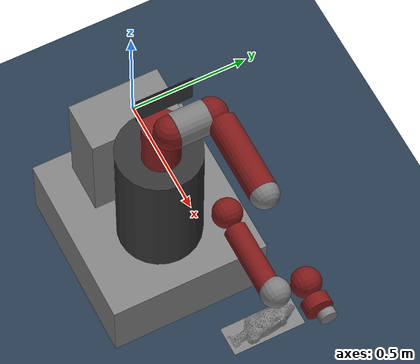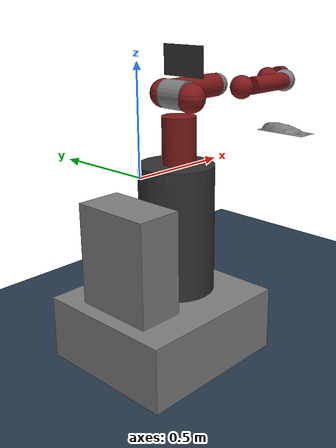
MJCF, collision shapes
<mujoco model='sawyer_fish'>
  <compiler meshdir="./mesh/sawyer/" angle='radian'/>
  <option timestep="0.005" collision='predefined'/>

  <asset>
      <mesh name="pedestal"   file="pedestal.stl" />
      <mesh name="base"       file="base.stl" />
      <mesh name="l0"         file="l0.stl" />
      <mesh name="head"       file="head.stl" />
      <mesh name="l1"         file="l1.stl" />
      <mesh name="l2"         file="l2.stl" />
      <mesh name="l3"         file="l3.stl" />
      <mesh name="l4"         file="l4.stl" />
      <mesh name="l5"         file="l5.stl" />
      <mesh name="l6"         file="l6.stl" />
      <mesh name="fish"       file="../fish/fish.stl" />
      <texture name="texplane" type="2d" builtin="checker" rgb1=".2 .3 .4" rgb2=".1 0.15 0.2" width="512" height="512"/>
      <material name="MatPlane" reflectance="0.3" texture="texplane" texrepeat="1 1" texuniform="true"/>
  </asset>

  <worldbody>
    <!-- Lights -->
    <light name="light0" diffuse="1 1 1" pos="0 0 3" dir="0 0 -1" castshadow="false"/>
    <light name="light1" diffuse="1 1 1" pos="1 -1 -.1" dir="-1 1 1" castshadow="false"/>
    <light name="light2" diffuse="1 1 1" pos="1.5 0 3"  dir="0 0 -1" castshadow="false"/>
    <!-- Environment -->
    <geom name="floor" pos="0 0 -.913" size="5 5 .125" type="plane" material="MatPlane" condim="3"/>
    <geom name="table" pos="1.1 0 0.025" type="plane" size=".4 .6 0.1" group = "1" rgba=".1 .1 .1 1"/>

    <body name="fish" pos="1.1 0 0.055" quat="1 0 0 0" >
      <joint name="fish" type="free" limited="false"/>
        <geom name="fish" pos="0 0 0" quat="1 0 0 0" type="mesh" group="1" mesh="fish" />
        <site name="fish_front" pos="-0.038 0 0.01" quat="1 0 0 0" type="sphere" size="1e-3" group="2" rgba="1 1 0 1" />
    </body>

    <!-- Robot -->
     <body name="base" pos=".25 0 0">
         <inertial pos="0 0 0" mass="0" diaginertia="0 0 0" />
         <body name="controller_box" pos="0 0 0">
             <inertial pos="-0.325 0 -0.38" mass="46.64" diaginertia="1.71363 1.27988 0.809981" />
             <geom name="controller_box" size="0.11 0.2 0.265" pos="-0.325 0 -0.38" type="box" />
         </body>
         <body name="pedestal_feet" pos="0 0 0">
             <inertial pos="-0.1225 0 -0.758" mass="167.09" diaginertia="8.16095 9.59375 15.0785" />
             <geom name="pedestal_feet" size="0.385 0.35 0.155" pos="-0.1225 0 -0.758" type="box" />
         </body>
         <body name="torso" pos="0 0 0">
             <inertial pos="0 0 0" mass="0.0001" diaginertia="1e-08 1e-08 1e-08" />
             <geom name="torso" size="0.05 0.05 0.05" type="box" contype="0" conaffinity="0" group="1" rgba="0.2 0.2 0.2 1" />
         </body>
         <body name="pedestal" pos="0 0 0">
             <inertial pos="0 0 0" quat="0.659267 -0.259505 -0.260945 0.655692" mass="60.864" diaginertia="6.0869 5.81635 4.20915" />
             <geom name="pedestal" pos="0.26 0.345 -0.91488" quat="0.5 0.5 -0.5 -0.5" type="mesh" contype="0" conaffinity="0" group="1" rgba="0.2 0.2 0.2 1" mesh="pedestal" />
             <geom name="pedestal_coll" size="0.18 0.31" pos="-0.02 0 -0.29" type="cylinder" rgba="0.2 0.2 0.2 1" />
         </body>
         <body name="right_arm_base_link" pos="0 0 0">
             <inertial pos="-0.0006241 -2.8025e-05 0.065404" quat="-0.209285 0.674441 0.227335 0.670558" mass="2.0687" diaginertia="0.00740351 0.00681776 0.00672942" />
             <geom name="right_arm_base_link" type="mesh" contype="0" conaffinity="0" group="1" rgba="0.5 0.1 0.1 1" mesh="base" />
              <geom name="right_base_coll" size="0.08 0.12" pos="0 0 0.12" type="cylinder" rgba="0.5 0.1 0.1 1" />
             <body name="right_l0" pos="0 0 0.08">
                 <inertial pos="0.024366 0.010969 0.14363" quat="0.894823 0.00899958 -0.170275 0.412573" mass="5.3213" diaginertia="0.0651588 0.0510944 0.0186218" />
                 <joint name="right_j0" pos="0 0 0" axis="0 0 1" limited="true" range="-3.0503 3.0503" />
                 <geom name="right_l0" type="mesh" contype="0" conaffinity="0" group="1" rgba="0.5 0.1 0.1 1" mesh="l0" />
                 <geom name="right_l0_coll" size="0.07" pos="0.08 0 0.23" rgba="0.5 0.1 0.1 1" />
                 <body name="head" pos="0 0 0.2965">
                     <inertial pos="0.0053207 -2.6549e-05 0.1021" quat="0.999993 7.08405e-05 -0.00359857 -0.000626247" mass="1.5795" diaginertia="0.0118334 0.00827089 0.00496574" />
                     <geom name="head" type="mesh" contype="0" conaffinity="0" group="1" rgba="0.5 0.1 0.1 1" mesh="head" />
                     <body name="screen" pos="0.03 0 0.105" quat="0.5 0.5 0.5 0.5">
                         <inertial pos="0 0 0" mass="0.0001" diaginertia="1e-08 1e-08 1e-08" />
                         <geom name="screen" size="0.12 0.07 0.001" type="box" contype="0" conaffinity="0" group="1" rgba="0.2 0.2 0.2 1" />
                          <geom name="screen_coll" size="0.001" rgba="0.2 0.2 0.2 1" />
                     </body>
                     <body name="head_camera" pos="0.0228027 0 0.216572" quat="0.342813 -0.618449 0.618449 -0.342813">
                         <inertial pos="0.0228027 0 0.216572" quat="0.342813 -0.618449 0.618449 -0.342813" mass="0" diaginertia="0 0 0" />
                     </body>
                 </body>
                 <body name="right_torso_itb" pos="-0.055 0 0.22" quat="0.707107 0 -0.707107 0">
                     <inertial pos="0 0 0" mass="0.0001" diaginertia="1e-08 1e-08 1e-08" />
                 </body>
                 <body name="right_l1" pos="0.081 0.05 0.237" quat="0.5 -0.5 0.5 0.5">
                     <inertial pos="-0.0030849 -0.026811 0.092521" quat="0.424888 0.891987 0.132364 -0.0794296" mass="4.505" diaginertia="0.0224339 0.0221624 0.0097097" />
                     <joint name="right_j1" pos="0 0 0" axis="0 0 1" limited="true" range="-3.8095 2.2736" />
                     <geom name="right_l1" type="mesh" contype="0" conaffinity="0" group="1" rgba="0.5 0.1 0.1 1" mesh="l1" />
                      <geom name="right_l1_coll" size="0.07" pos="0 0 0.1225" rgba="0.5 0.1 0.1 1" />
                     <body name="right_l2" pos="0 -0.14 0.1425" quat="0.707107 0.707107 0 0">
                         <inertial pos="-0.00016044 -0.014967 0.13582" quat="0.707831 -0.0524761 0.0516007 0.702537" mass="1.745" diaginertia="0.0257928 0.025506 0.00292515" />
                         <joint name="right_j2" pos="0 0 0" axis="0 0 1" limited="true" range="-3.0426 3.0426" />
                         <geom name="right_l2" type="mesh" contype="0" conaffinity="0" group="1" rgba="0.5 0.1 0.1 1" mesh="l2" />
                          <geom name="right_l2_coll" size="0.06 0.17" pos="0 0 0.08" type="cylinder" rgba="0.5 0.1 0.1 1" />
                         <body name="right_l3" pos="0 -0.042 0.26" quat="0.707107 -0.707107 0 0">
                             <inertial pos="-0.0048135 -0.0281 -0.084154" quat="0.902999 0.385391 -0.0880901 0.168247" mass="2.5097" diaginertia="0.0102404 0.0096997 0.00369622" />
                             <joint name="right_j3" pos="0 0 0" axis="0 0 1" limited="true" range="-3.0439 3.0439" />
                             <geom name="right_l3" type="mesh" contype="0" conaffinity="0" group="1" rgba="0.5 0.1 0.1 1" mesh="l3" />
                              <geom name="right_l3_coll" size="0.06" pos="0 -0.01 -0.12" rgba="0.5 0.1 0.1 1" />
                             <body name="right_l4" pos="0 -0.125 -0.1265" quat="0.707107 0.707107 0 0">
                                 <inertial pos="-0.0018844 0.0069001 0.1341" quat="0.803612 0.031257 -0.0298334 0.593582" mass="1.1136" diaginertia="0.0136549 0.0135493 0.00127353" />
                                 <joint name="right_j4" pos="0 0 0" axis="0 0 1" limited="true" range="-2.9761 2.9761" />
                                 <geom name="right_l4" type="mesh" contype="0" conaffinity="0" group="1" rgba="0.5 0.1 0.1 1" mesh="l4" />
                                  <geom name="right_l4_coll" size="0.045 0.15" pos="0 0 0.11" type="cylinder" rgba="0.5 0.1 0.1 1" />
                                 <body name="right_arm_itb" pos="-0.055 0 0.075" quat="0.707107 0 -0.707107 0">
                                     <inertial pos="0 0 0" mass="0.0001" diaginertia="1e-08 1e-08 1e-08" />
                                 </body>
                                 <body name="right_l5" pos="0 0.031 0.275" quat="0.707107 -0.707107 0 0">
                                     <inertial pos="0.0061133 -0.023697 0.076416" quat="0.404076 0.9135 0.0473125 0.00158335" mass="1.5625" diaginertia="0.00474131 0.00422857 0.00190672" />
                                     <joint name="right_j5" pos="0 0 0" axis="0 0 1" limited="true" range="-2.9761 2.9761" />
                                     <geom name="right_l5" type="mesh" contype="0" conaffinity="0" group="1" rgba="0.5 0.1 0.1 1" mesh="l5" />
                                     <geom name="right_l5_coll" size="0.06" pos="0 0 0.1" rgba="0.5 0.1 0.1 1" />
                                     <site name="link5" pos="0 0 0.15" type="sphere" size="1e-3" group="2" rgba="0 1 0 1" />
                                     <body name="right_hand_camera" pos="0.039552 -0.033 0.0695" quat="0.707107 0 0.707107 0">
                                         <inertial pos="0.039552 -0.033 0.0695" quat="0.707107 0 0.707107 0" mass="0" diaginertia="0 0 0" />
                                     </body>
                                     <body name="right_wrist" pos="0 0 0.10541" quat="0.707107 0.707107 0 0">
                                         <inertial pos="0 0 0.10541" quat="0.707107 0.707107 0 0" mass="0" diaginertia="0 0 0" />
                                     </body>
                                     <body name="right_l6" pos="0 -0.11 0.1053" quat="0.0616248 0.06163 -0.704416 0.704416">
                                         <inertial pos="-8.0726e-06 0.0085838 -0.0049566" quat="0.479044 0.515636 -0.513069 0.491322" mass="0.3292" diaginertia="0.000360258 0.000311068 0.000214974" />
                                         <joint name="right_j6" pos="0 0 0" axis="0 0 1" limited="true" range="-4.7124 4.7124" />
                                         <geom name="right_l6" type="mesh" contype="0" conaffinity="0" group="1" rgba="0.5 0.1 0.1 1" mesh="l6" />
                                         <geom name="right_l6_coll" size="0.055 0.025" pos="0 0.015 -0.01" type="cylinder" rgba="0.5 0.1 0.1 1" />
                                         <body name="right_hand" pos="0 0 0.0245" quat="0.707107 0 0 0.707107">
                                             <inertial pos="1e-08 1e-08 1e-08" quat="0.820473 0.339851 -0.17592 0.424708" mass="1e-08" diaginertia="1e-08 1e-08 1e-08" />
                                              <geom name="right_hand_coll" size="0.035 0.015" pos="0 0 0.02" type="cylinder" />
                                              <site name="end_effector" type="sphere" size="1e-3" pos="0 0 6e-3" group="2" rgba="0 1 0 1" />
                                         </body>
                                     </body>
                                 </body>
                                 <body name="right_l4_2" pos="0 0 0">
                                     <inertial pos="1e-08 1e-08 1e-08" quat="0.820473 0.339851 -0.17592 0.424708" mass="1e-08" diaginertia="1e-08 1e-08 1e-08" />
                                     <geom name="right_l4_2" size="0.06" pos="0 0.01 0.26" />
                                 </body>
                             </body>
                         </body>
                         <body name="right_l2_2" pos="0 0 0">
                             <inertial pos="1e-08 1e-08 1e-08" quat="0.820473 0.339851 -0.17592 0.424708" mass="1e-08" diaginertia="1e-08 1e-08 1e-08" />
                             <geom name="right_l2_2" size="0.06" pos="0 0 0.26" />
                         </body>
                     </body>
                     <body name="right_l1_2" pos="0 0 0">
                         <inertial pos="1e-08 1e-08 1e-08" quat="0.820473 0.339851 -0.17592 0.424708" mass="1e-08" diaginertia="1e-08 1e-08 1e-08" />
                         <geom name="right_l1_2" size="0.07 0.07" pos="0 0 0.035" type="cylinder" />
                     </body>
                 </body>
             </body>
         </body>
     </body>

      <!-- Ghost representing desired pose -->
      <body name="ghost" pos="1.2 0 0.035" >
          <geom name="ghost" pos="0 0 0" quat="1 0 0 0" type="mesh" contype="0" conaffinity="0" group="1" mesh="fish" rgba="0.1 0.8 0.1 1" />
      </body>
  </worldbody>

  <!-- Actuators -->
  <actuator>
    <motor name="right_j0"    joint="right_j0" ctrllimited="true" ctrlrange="-80 80" />
    <motor name="right_j1"    joint="right_j1" ctrllimited="true" ctrlrange="-80 80" />
    <motor name="right_j2"    joint="right_j2" ctrllimited="true" ctrlrange="-40 40" />
    <motor name="right_j3"    joint="right_j3" ctrllimited="true" ctrlrange="-40 40" />
    <motor name="right_j4"    joint="right_j4" ctrllimited="true" ctrlrange="-9 9" />
    <motor name="right_j5"    joint="right_j5" ctrllimited="true" ctrlrange="-9 9" />
    <motor name="right_j6"    joint="right_j6" ctrllimited="true" ctrlrange="-9 9" />
  </actuator>

  <!-- Contacts -->
  <contact>
    <pair geom1="right_l6" geom2="fish" />
    <pair geom1="right_l5" geom2="fish" />
    <pair geom1="right_l4" geom2="fish" />
    <pair geom1="right_l6" geom2="table"  />
    <pair geom1="right_l5" geom2="table" />
    <pair geom1="right_l4" geom2="table"  />
    <pair geom1="table"    geom2="fish" />
  </contact>

  <!-- Key frames -->
  <keyframe>
    <key name="init_pose" qpos="1.1 0 0.045 1 0 0 0 -0.125 -0.433 0 1.6 -0.15 -0.923 0" />
  </keyframe>

</mujoco>
